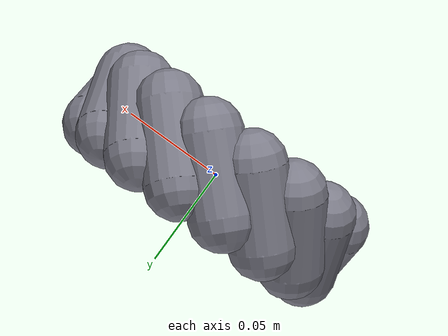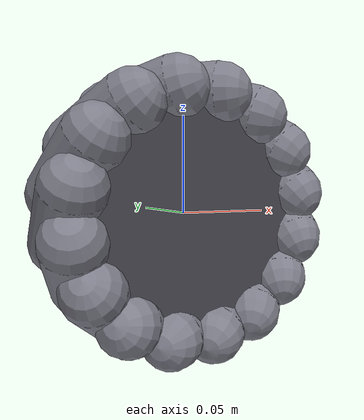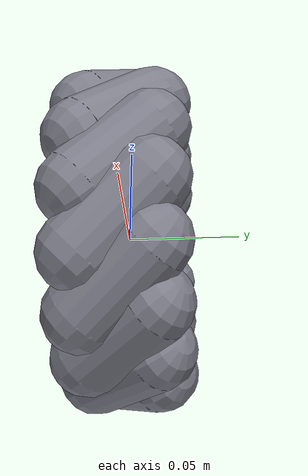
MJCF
<?xml version='1.0' encoding='utf-8'?>
<mujoco model="stock mecanum wheel right example">
  <option gravity="0 0 0" />
  <worldbody>
    <body name="wheel_EXAMPLE">
      <joint name="drive_EXAMPLE" axis="0 1 0" armature="0.002" damping="0.01" />
      <geom name="hub_EXAMPLE" type="cylinder" size="0.052 0.02" quat="0.7071068 0.7071068 0 0" mass="1.2" rgba="0.25 0.25 0.28 1" />
      <body name="roller_EXAMPLE_0" pos="0.06 0 0">
        <joint name="rollerj_EXAMPLE_0" axis="0 0.7071068 0.7071068" armature="1e-05" damping="0.0005" frictionloss="0.002" />
        <geom name="rollerg_EXAMPLE_0" type="capsule" size="0.016 0.019403" quat="0.9238795 -0.3826834 0 0" contype="2" friction="0.9" mass="0.04" rgba="0.5 0.5 0.55 1" />
      </body>
      <body name="roller_EXAMPLE_1" pos="0.05543277 0 0.02296101">
        <joint name="rollerj_EXAMPLE_1" axis="-0.2705981 0.7071068 0.6532815" armature="1e-05" damping="0.0005" frictionloss="0.002" />
        <geom name="rollerg_EXAMPLE_1" type="capsule" size="0.016 0.019403" quat="0.9091979 -0.388863 -0.1488114 0" contype="2" friction="0.9" mass="0.04" rgba="0.5 0.5 0.55 1" />
      </body>
      <body name="roller_EXAMPLE_2" pos="0.04242641 0 0.04242641">
        <joint name="rollerj_EXAMPLE_2" axis="-0.5 0.7071068 0.5" armature="1e-05" damping="0.0005" frictionloss="0.002" />
        <geom name="rollerg_EXAMPLE_2" type="capsule" size="0.016 0.019403" quat="0.8660254 -0.4082483 -0.2886751 0" contype="2" friction="0.9" mass="0.04" rgba="0.5 0.5 0.55 1" />
      </body>
      <body name="roller_EXAMPLE_3" pos="0.02296101 0 0.05543277">
        <joint name="rollerj_EXAMPLE_3" axis="-0.6532815 0.7071068 0.2705981" armature="1e-05" damping="0.0005" frictionloss="0.002" />
        <geom name="rollerg_EXAMPLE_3" type="capsule" size="0.016 0.019403" quat="0.7970565 -0.4435738 -0.4098088 0" contype="2" friction="0.9" mass="0.04" rgba="0.5 0.5 0.55 1" />
      </body>
      <body name="roller_EXAMPLE_4" pos="0 0 0.06">
        <joint name="rollerj_EXAMPLE_4" axis="-0.7071068 0.7071068 0" armature="1e-05" damping="0.0005" frictionloss="0.002" />
        <geom name="rollerg_EXAMPLE_4" type="capsule" size="0.016 0.019403" quat="0.7071068 -0.5 -0.5 0" contype="2" friction="0.9" mass="0.04" rgba="0.5 0.5 0.55 1" />
      </body>
      <body name="roller_EXAMPLE_5" pos="-0.02296101 0 0.05543277">
        <joint name="rollerj_EXAMPLE_5" axis="-0.6532815 0.7071068 -0.2705981" armature="1e-05" damping="0.0005" frictionloss="0.002" />
        <geom name="rollerg_EXAMPLE_5" type="capsule" size="0.016 0.019403" quat="0.6039048 -0.5854456 -0.5408812 0" contype="2" friction="0.9" mass="0.04" rgba="0.5 0.5 0.55 1" />
      </body>
      <body name="roller_EXAMPLE_6" pos="-0.04242641 0 0.04242641">
        <joint name="rollerj_EXAMPLE_6" axis="-0.5 0.7071068 -0.5" armature="1e-05" damping="0.0005" frictionloss="0.002" />
        <geom name="rollerg_EXAMPLE_6" type="capsule" size="0.016 0.019403" quat="0.5 -0.7071068 -0.5 0" contype="2" friction="0.9" mass="0.04" rgba="0.5 0.5 0.55 1" />
      </body>
      <body name="roller_EXAMPLE_7" pos="-0.05543277 0 0.02296101">
        <joint name="rollerj_EXAMPLE_7" axis="-0.2705981 0.7071068 -0.6532815" armature="1e-05" damping="0.0005" frictionloss="0.002" />
        <geom name="rollerg_EXAMPLE_7" type="capsule" size="0.016 0.019403" quat="0.4163643 -0.8491443 -0.3249534 0" contype="2" friction="0.9" mass="0.04" rgba="0.5 0.5 0.55 1" />
      </body>
      <body name="roller_EXAMPLE_8" pos="-0.06 0 0">
        <joint name="rollerj_EXAMPLE_8" axis="0 0.7071068 -0.7071068" armature="1e-05" damping="0.0005" frictionloss="0.002" />
        <geom name="rollerg_EXAMPLE_8" type="capsule" size="0.016 0.019403" quat="0.3826834 -0.9238795 0 0" contype="2" friction="0.9" mass="0.04" rgba="0.5 0.5 0.55 1" />
      </body>
      <body name="roller_EXAMPLE_9" pos="-0.05543277 0 -0.02296101">
        <joint name="rollerj_EXAMPLE_9" axis="0.2705981 0.7071068 -0.6532815" armature="1e-05" damping="0.0005" frictionloss="0.002" />
        <geom name="rollerg_EXAMPLE_9" type="capsule" size="0.016 0.019403" quat="0.4163643 -0.8491443 0.3249534 0" contype="2" friction="0.9" mass="0.04" rgba="0.5 0.5 0.55 1" />
      </body>
      <body name="roller_EXAMPLE_10" pos="-0.04242641 0 -0.04242641">
        <joint name="rollerj_EXAMPLE_10" axis="0.5 0.7071068 -0.5" armature="1e-05" damping="0.0005" frictionloss="0.002" />
        <geom name="rollerg_EXAMPLE_10" type="capsule" size="0.016 0.019403" quat="0.5 -0.7071068 0.5 0" contype="2" friction="0.9" mass="0.04" rgba="0.5 0.5 0.55 1" />
      </body>
      <body name="roller_EXAMPLE_11" pos="-0.02296101 0 -0.05543277">
        <joint name="rollerj_EXAMPLE_11" axis="0.6532815 0.7071068 -0.2705981" armature="1e-05" damping="0.0005" frictionloss="0.002" />
        <geom name="rollerg_EXAMPLE_11" type="capsule" size="0.016 0.019403" quat="0.6039048 -0.5854456 0.5408812 0" contype="2" friction="0.9" mass="0.04" rgba="0.5 0.5 0.55 1" />
      </body>
      <body name="roller_EXAMPLE_12" pos="0 0 -0.06">
        <joint name="rollerj_EXAMPLE_12" axis="0.7071068 0.7071068 0" armature="1e-05" damping="0.0005" frictionloss="0.002" />
        <geom name="rollerg_EXAMPLE_12" type="capsule" size="0.016 0.019403" quat="0.7071068 -0.5 0.5 0" contype="2" friction="0.9" mass="0.04" rgba="0.5 0.5 0.55 1" />
      </body>
      <body name="roller_EXAMPLE_13" pos="0.02296101 0 -0.05543277">
        <joint name="rollerj_EXAMPLE_13" axis="0.6532815 0.7071068 0.2705981" armature="1e-05" damping="0.0005" frictionloss="0.002" />
        <geom name="rollerg_EXAMPLE_13" type="capsule" size="0.016 0.019403" quat="0.7970565 -0.4435738 0.4098088 0" contype="2" friction="0.9" mass="0.04" rgba="0.5 0.5 0.55 1" />
      </body>
      <body name="roller_EXAMPLE_14" pos="0.04242641 0 -0.04242641">
        <joint name="rollerj_EXAMPLE_14" axis="0.5 0.7071068 0.5" armature="1e-05" damping="0.0005" frictionloss="0.002" />
        <geom name="rollerg_EXAMPLE_14" type="capsule" size="0.016 0.019403" quat="0.8660254 -0.4082483 0.2886751 0" contype="2" friction="0.9" mass="0.04" rgba="0.5 0.5 0.55 1" />
      </body>
      <body name="roller_EXAMPLE_15" pos="0.05543277 0 -0.02296101">
        <joint name="rollerj_EXAMPLE_15" axis="0.2705981 0.7071068 0.6532815" armature="1e-05" damping="0.0005" frictionloss="0.002" />
        <geom name="rollerg_EXAMPLE_15" type="capsule" size="0.016 0.019403" quat="0.9091979 -0.388863 0.1488114 0" contype="2" friction="0.9" mass="0.04" rgba="0.5 0.5 0.55 1" />
      </body>
    </body>
  </worldbody>
  <actuator>
    <general name="motor_EXAMPLE" joint="drive_EXAMPLE" ctrlrange="-45 45" forcerange="-15 15" biastype="affine" gainprm="12" biasprm="0 0 -12" />
  </actuator>
</mujoco>
